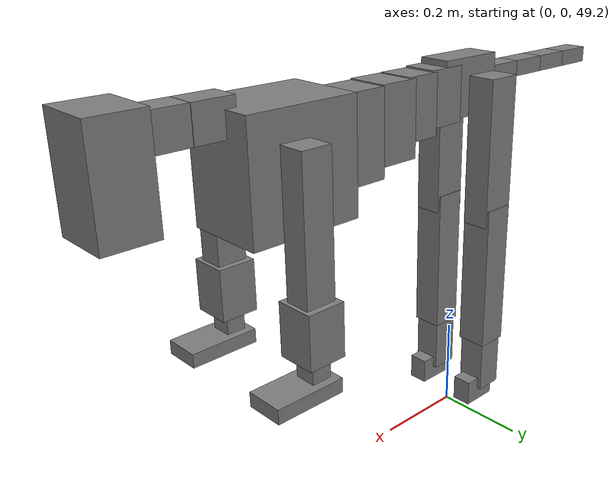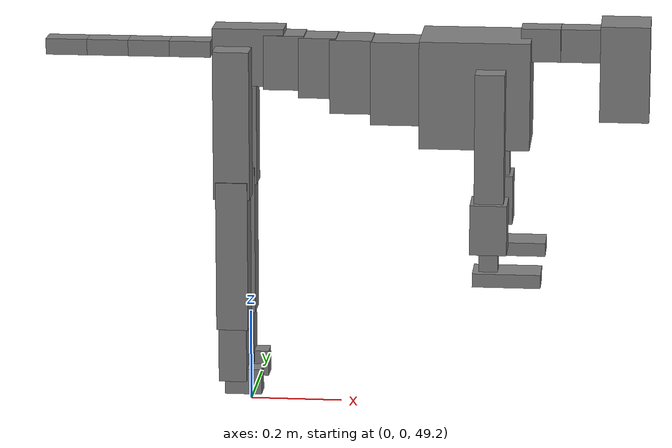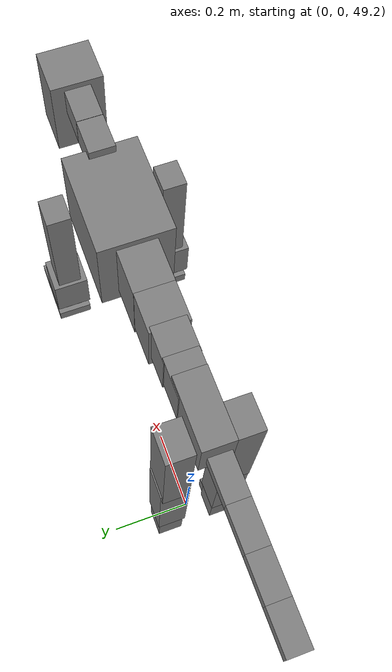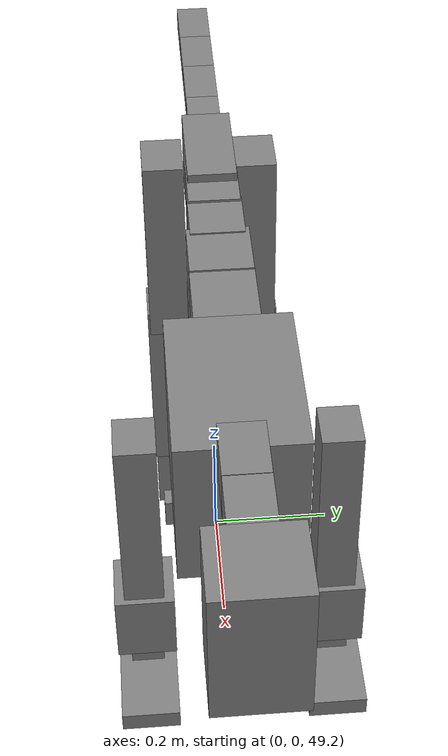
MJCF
<mujoco model="dog">

    <default>
        <joint armature="0.02" stiffness="1" damping="0.2" limited="true"/>
        <geom condim="3" friction="1 0.05 0.05" margin="0.01"/>
        <motor ctrllimited="true" ctrlrange="-1.0 1.0" forcelimited="true" gear="50"/>
    </default>

    <compiler inertiafromgeom="true" angle="radian"/>

    <option timestep="0.016" iterations="50" tolerance="1e-10" solver="Newton" jacobian="dense" cone="pyramidal"/>

    <size nconmax="20000" njmax="60000" nstack="5000000"/>
    <visual>
        <map force="0.1" zfar="30"/>
        <rgba haze="0.15 0.25 0.35 1"/>
        <quality shadowsize="2048"/>
        <global offwidth="800" offheight="800"/>
    </visual>

    <asset>
        <texture type="skybox" builtin="gradient" rgb1="0.3 0.5 0.7" rgb2="0 0 0" width="512" height="512"/>
        <texture name="texplane" type="2d" builtin="checker" rgb1=".2 .3 .4" rgb2=".1 0.15 0.2" width="512" height="512"
                 mark="cross" markrgb=".8 .8 .8"/>
        <texture name="texgeom" type="cube" builtin="flat" mark="cross" width="127" height="1278" rgb1="0.8 0.6 0.4"
                 rgb2="0.8 0.6 0.4" markrgb="1 1 1" random="0.01"/>

        <material name="matplane" reflectance="0.3" texture="texplane" texrepeat="1 1" texuniform="true"/>
        <material name="matgeom" texture="texgeom" texuniform="true" rgba="0.8 0.6 .4 1"/>
    </asset>

    <worldbody>
        <geom name="floor" pos="0 0 0" size="0 0 .25" type="plane" material="matplane" condim="3"/>

        <light directional="false" diffuse=".2 .2 .2" specular="0 0 0" pos="0 0 5" dir="0 0 -1" castshadow="false"/>
        <light mode="targetbodycom" target="torso" directional="false" diffuse=".8 .8 .8" specular="0.3 0.3 0.3"
               pos="0 0 4.0" dir="0 0 -1"/>

        <body name="root" pos="0 0 50">
            <freejoint name="root_1"/>
            <geom type="box" pos="0 0 -0.02" size="0.0774  0.0358  0.063" density="2030"/>

            <body name="spine1" pos="0.054 0 0">
                <joint name="spine1_y" axis="0 1 0" range="0 0.7" limited="true"/>
                <geom type="box" pos="0.02375 0 -0.03" size="0.04375  0.0375  0.05985" density="2030"/>

                <body name="spine2" pos="0.0612 0 0">
                    <joint name="spine2_y" axis="0 1 0" range="-0.15 0.15" limited="true"/>
                    <geom type="box" pos="0.03555  0  -0.04" size="0.04055  0.039  0.06615" density="2030"/>

                    <body name="spine3" pos="0.0730 0 0">
                        <joint name="spine3_y" axis="0 1 0" range="-0.15 0.15" limited="true"/>
                        <geom type="box" pos="0.03555  0  -0.057" size="0.04555  0.0445  0.081" density="2030"/>

                        <body name="spine4" pos="0.0780 0 0">
                            <joint name="spine4_y" axis="0 1 0" range="-0.15 0.15" limited="true"/>
                            <geom type="box" pos="0.05265  0  -0.07" size="0.05265  0.045  0.09135" density="2030"/>

                            <body name="torso" pos="0.1082 0 0">
                                <joint name="torso_y" axis="0 1 0" range="-0.15 0.15" limited="true"/>
                                <geom type="box" pos="0.11925  0  -0.085" size="0.11925  0.085  0.11745"
                                      density="2030"/>

                                <body name="neck1" pos="0.2160  0   0.0180">
                                    <joint name="neck1_y" axis="0 1 0" range="-1.2  -1" limited="true"/>
                                    <geom type="box" pos="0.0423  0  0" size="0.0423  0.03  0.036" density="2325"/>

                                    <body name="neck2" pos="0.0853  0  0">
                                        <joint name="neck2_y" axis="0 1 0" range="0.1  0" limited="true"/>
                                        <geom type="box" pos="0.0423  0  0" size="0.0423  0.03  0.036" density="2325"/>

                                        <body name="head" pos="0.0853  0  0">
                                            <joint name="head_y" axis="0 1 0" range="-0.3  -0.2" limited="true"/>
                                            <geom type="box" pos="0.0531  0  -0.055" size="0.0531  0.06  0.1044"
                                                  density="4030"/>

                                        </body>
                                    </body>
                                </body>

                                <body name="front_shoulder" pos="0.156  0   -0.0480">
                                    <joint name="front_shoulder_y" axis="0 1 0" range="-1 1.5" limited="true"/>
                                    <geom type="box" pos="0 0.13 -0.1279" size="0.0317  0.0271  0.1545" density="1158"/>
                                    <geom type="box" pos="0 -0.13 -0.1279" size="0.0317  0.0271  0.1545"
                                          density="1158"/>

                                    <body name="front_elbow" pos="0  0  -0.2557">
                                        <joint name="front_elbow_y" axis="0 1 0" range="-2 0" limited="true"/>
                                        <geom type="box" pos="0 0.13 -0.0547" size="0.0397  0.0406  0.0547"
                                              density="1081"/>
                                        <geom type="box" pos="0 -0.13 -0.0547" size="0.0397  0.0406  0.0547"
                                              density="1081"/>

                                        <body name="front_wrist" pos="0  0  -0.1095">
                                            <joint name="front_wrist_y" axis="0 1 0" range="-0.2 0" limited="true"/>
                                            <geom type="box" pos="0 0.13 -0.0282" size="0.0205  0.0227  0.0413"
                                                  density="1664"/>
                                            <geom type="box" pos="0 -0.13 -0.0282" size="0.0205  0.0227  0.0413"
                                                  density="1664"/>

                                            <body name="front_finger_end" pos="0  0  -0.0563">
                                                <joint name="front_finger_y" axis="0 1 0" range="-0.4 1"
                                                       limited="true"/>
                                                <geom type="box" pos="0.0400  0.13  0.0002"
                                                      size="0.0733  0.0400  0.0148" density="1515"/>
                                                <geom type="box" pos="0.0400  -0.13  0.0002"
                                                      size="0.0733  0.0400  0.0148" density="1515"/>

                                            </body>

                                        </body>
                                    </body>
                                </body>

                            </body>
                        </body>
                    </body>
                </body>
            </body>

            <body name="back_hip" pos="-0.03 0 -0.018">
                <joint name="back_hip_y" axis="0 1 0" range="-1.5 0.3" limited="true"/>
                <geom type="box" pos="0 0.07 -0.1406" size="0.0392  0.0308  0.1634" density="1154"/>
                <geom type="box" pos="0 -0.07 -0.1406" size="0.0392  0.0308  0.1634" density="1154"/>

                <body name="back_knee" pos="0  0  -0.2811">
                    <joint name="back_knee_y" axis="0 1 0" range="0 2.8" limited="true"/>
                    <geom type="box" pos="0 0.07 -0.1498" size="0.0345  0.0340  0.1654" density="1227"/>
                    <geom type="box" pos="0 -0.07 -0.1498" size="0.0345  0.0340  0.1654" density="1227"/>

                    <body name="back_ankle" pos="0  0  -0.2996">
                        <joint name="back_ankle_y" axis="0 1 0" range="-2.2 0" limited="true"/>
                        <geom type="box" pos="0 0.07 -0.0615" size="0.0305  0.0305  0.0727" density="1284"/>
                        <geom type="box" pos="0 -0.07 -0.0615" size="0.0305  0.0305  0.0727" density="1284"/>

                        <body name="back_toe_end" pos="0  0  -0.1229">
                            <joint name="back_toe_y" axis="0 1 0" range="-0.4 1" limited="true"/>
                            <geom type="box" pos="0.0221  0.07  -0.0134" size="0.0404  0.0221  0.0284" density="1515"/>
                            <geom type="box" pos="0.0221  -0.07  -0.0134" size="0.0404  0.0221  0.0284" density="1515"/>

                        </body>
                    </body>
                </body>
            </body>

            <body name="tail1" pos="-0.074 0 -0.006">
                <joint name="tail1_y" axis="0 1 0" range="-0.2 0.2" limited="true"/>
                <geom type="box" pos="-0.0536  0  0" size="0.045  0.025  0.0175" density="1587"/>

                <body name="tail2" pos="-0.09 0 0">
                    <joint name="tail2_y" axis="0 1 0" range="-0.2 0.2" limited="true"/>
                    <geom type="box" pos="-0.0536  0  0" size="0.045  0.025  0.0175" density="1587"/>

                    <body name="tail3" pos="-0.09 0 0">
                        <joint name="tail3_y" axis="0 1 0" range="-0.2 0.2" limited="true"/>
                        <geom type="box" pos="-0.0536  0  0" size="0.045  0.025  0.0175" density="1587"/>

                        <body name="tail4" pos="-0.09 0 0">
                            <joint name="tail4_y" axis="0 1 0" range="-0.2 0.2" limited="true"/>
                            <geom type="box" pos="-0.0536  0  0" size="0.045  0.025  0.0175" density="1587"/>

                        </body>
                    </body>
                </body>
            </body>
        </body>
    </worldbody>

    <actuator>
        <motor joint="spine1_y" forcerange="-150 150     "/>
        <motor joint="spine2_y" forcerange="-150 150     "/>
        <motor joint="spine3_y" forcerange="-150 150     "/>
        <motor joint="spine4_y" forcerange="-150 150     "/>
        <motor joint="torso_y" forcerange="-150 150     "/>
        <motor joint="neck1_y" forcerange="-100 100       "/>
        <motor joint="neck2_y" forcerange="-100 100       "/>
        <motor joint="head_y" forcerange="-150 150       "/>
        <motor joint="front_shoulder_y" forcerange="-169.69 110.73"/>
        <motor joint="front_elbow_y" forcerange="-195.99 199.01"/>
        <motor joint="front_wrist_y" forcerange="-71.88 109.96"/>
        <motor joint="front_finger_y" forcerange="-98.21 75.11"/>
        <motor joint="back_hip_y" forcerange="-232.95 377.18"/>
        <motor joint="back_knee_y" forcerange="-380.22 314.18"/>
        <motor joint="back_angle_y" forcerange="-220.61 166.99"/>
        <motor joint="back_toe_y" forcerange="-60.91 35.52"/>
        <motor joint="tail1_y" forcerange="-50 50     "/>
        <motor joint="tail2_y" forcerange="-50 50     "/>
        <motor joint="tail3_y" forcerange="-50 50     "/>
        <motor joint="tail4_y" forcerange="-50 50     "/>
    </actuator>
</mujoco>
